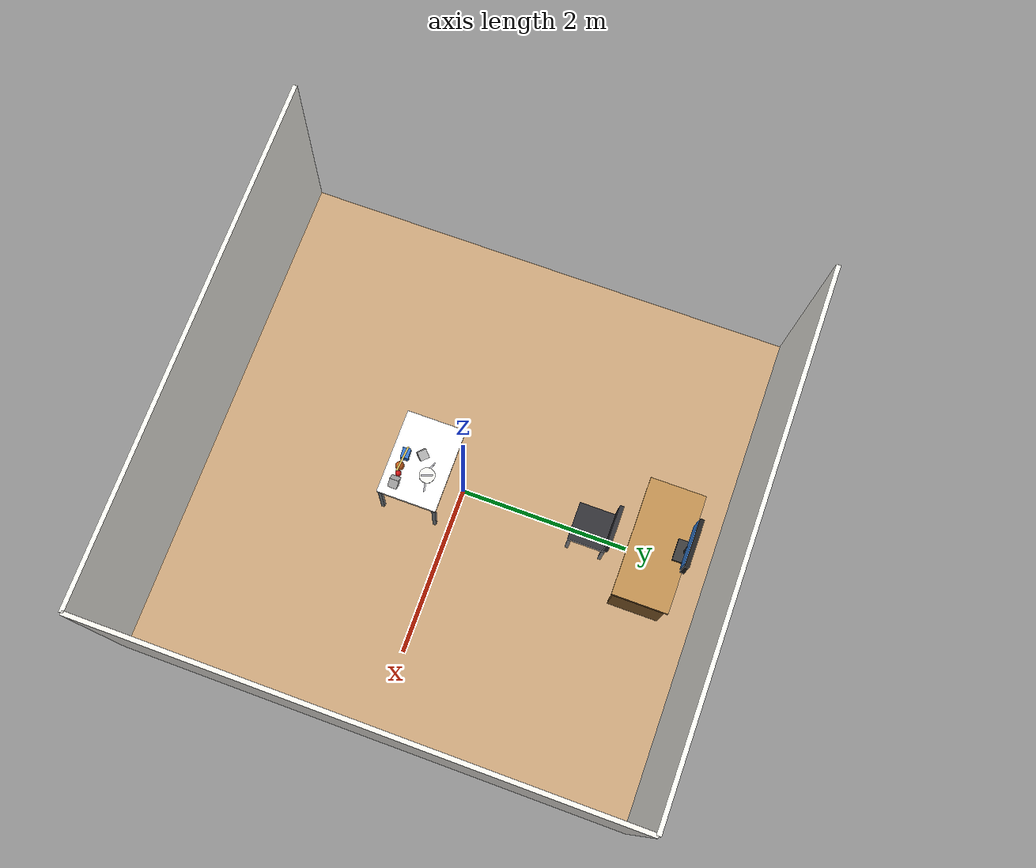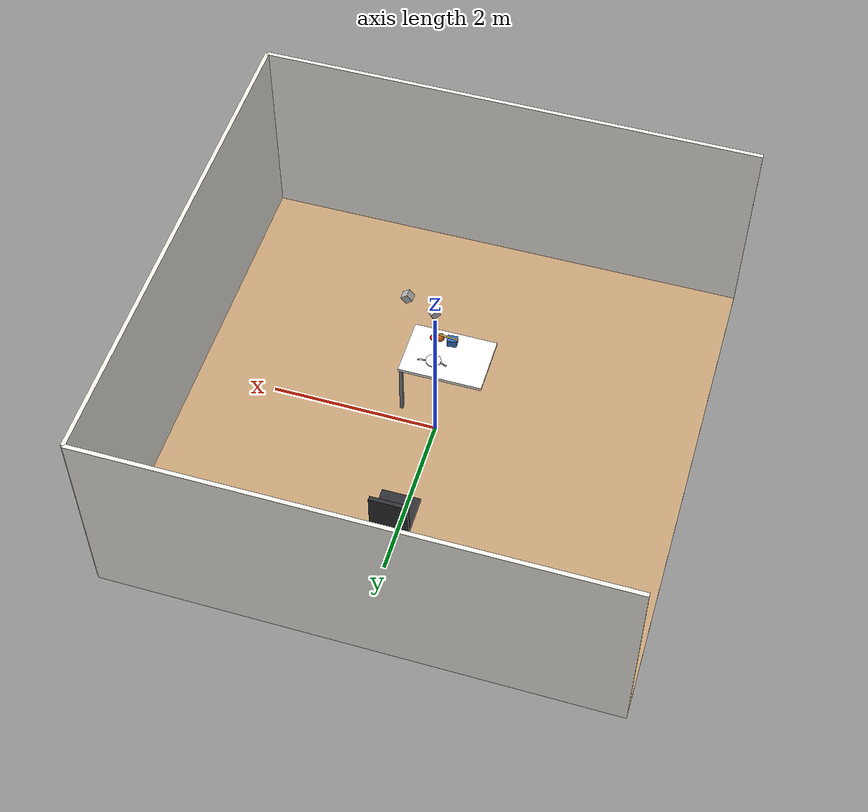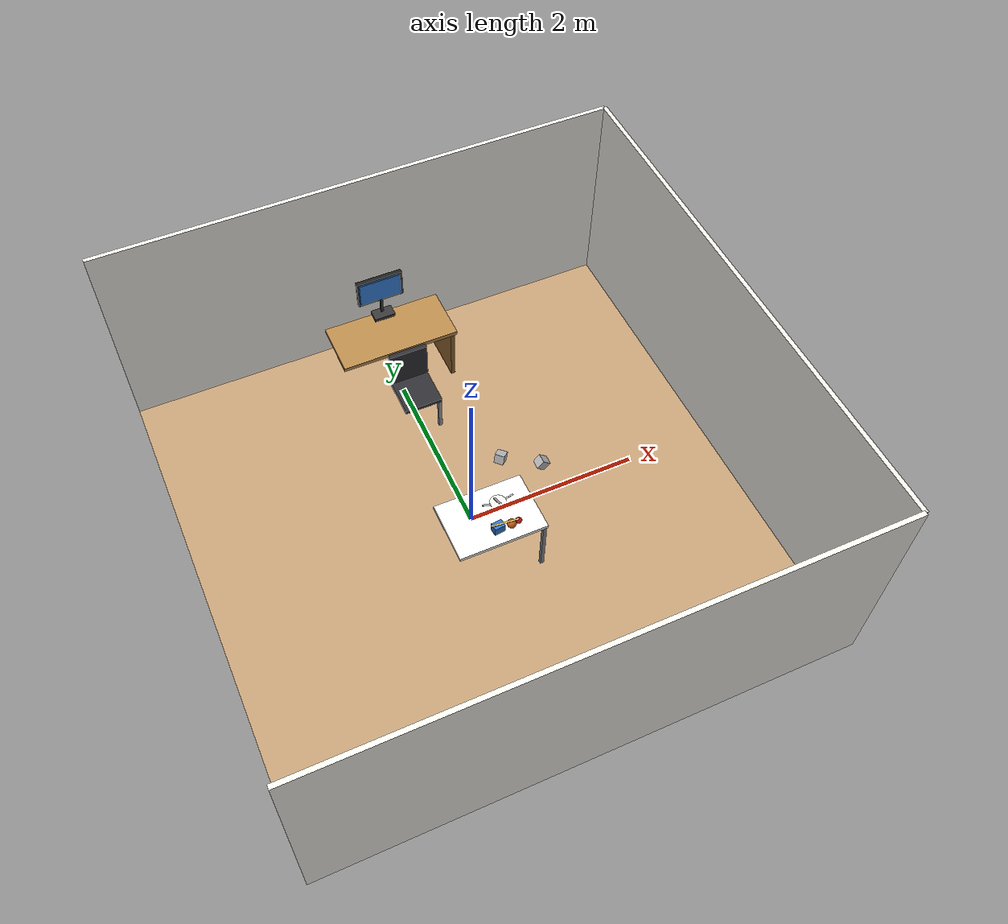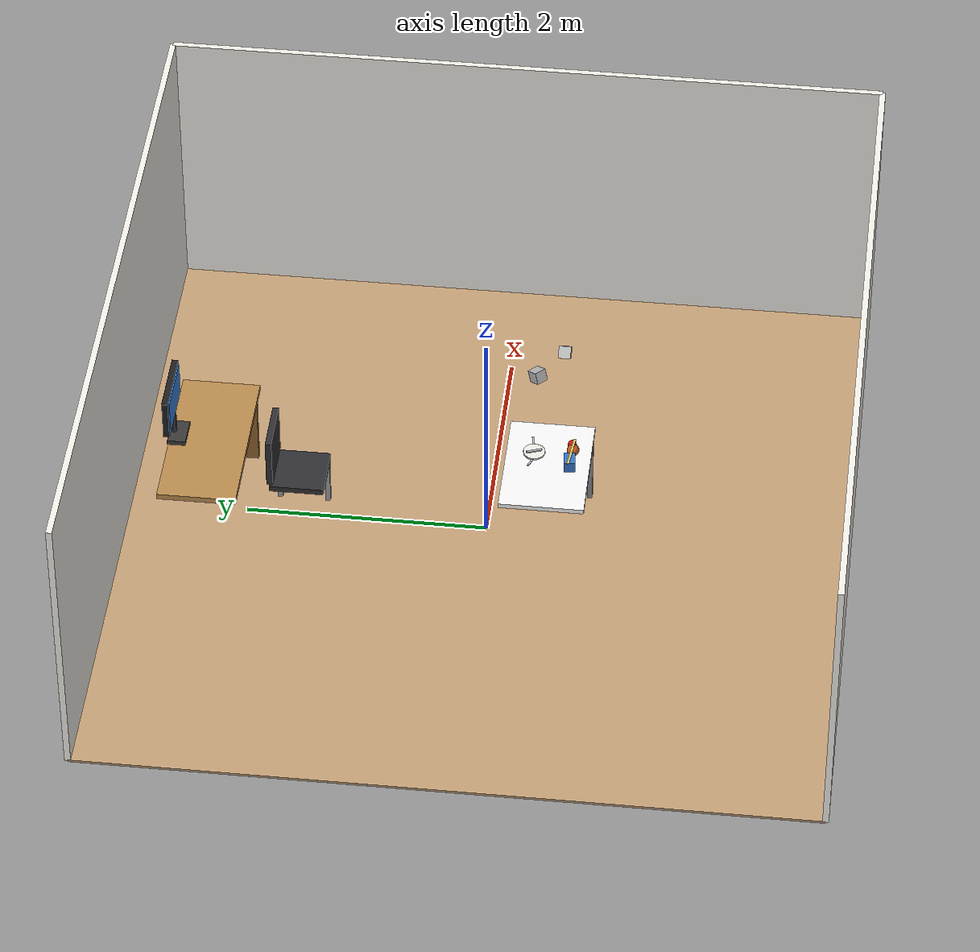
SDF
<sdf version="1.10">
 <world name="bps_room">
  <model name="floor">
   <static>true</static>
   <link name="link">
    <collision name="collision"><geometry><box><size>6 6 0.02</size></box></geometry></collision>
    <visual name="visual">
     <geometry><box><size>6 6 0.02</size></box></geometry>
     <material>
      <ambient>0.75999999 0.620000005 0.460000008 1</ambient>
      <diffuse>0.75999999 0.620000005 0.460000008 1</diffuse>
     </material>
    </visual>
    <inertial>
     <mass>1</mass>
     <inertia><ixx>1</ixx><ixy>0</ixy><ixz>0</ixz><iyy>1</iyy><iyz>0</iyz><izz>1</izz></inertia>
    </inertial>
   </link>
  </model>
  <model name="wall_north">
   <static>true</static>
   <pose>0 3 1.25 0 0 0</pose>
   <link name="link">
    <collision name="collision">
     <geometry><box><size>6 0.050000000000000003 2.5</size></box></geometry>
    </collision>
    <visual name="visual">
     <geometry><box><size>6 0.050000000000000003 2.5</size></box></geometry>
     <material>
      <ambient>0.949999988 0.939999998 0.910000026 1</ambient>
      <diffuse>0.949999988 0.939999998 0.910000026 1</diffuse>
     </material>
    </visual>
    <inertial>
     <mass>1</mass>
     <inertia><ixx>1</ixx><ixy>0</ixy><ixz>0</ixz><iyy>1</iyy><iyz>0</iyz><izz>1</izz></inertia>
    </inertial>
   </link>
  </model>
  <model name="wall_south">
   <static>true</static>
   <pose>0 -3 1.25 0 0 0</pose>
   <link name="link">
    <collision name="collision">
     <geometry><box><size>6 0.050000000000000003 2.5</size></box></geometry>
    </collision>
    <visual name="visual">
     <geometry><box><size>6 0.050000000000000003 2.5</size></box></geometry>
     <material>
      <ambient>0.949999988 0.939999998 0.910000026 1</ambient>
      <diffuse>0.949999988 0.939999998 0.910000026 1</diffuse>
     </material>
    </visual>
    <inertial>
     <mass>1</mass>
     <inertia><ixx>1</ixx><ixy>0</ixy><ixz>0</ixz><iyy>1</iyy><iyz>0</iyz><izz>1</izz></inertia>
    </inertial>
   </link>
  </model>
  <model name="wall_east">
   <static>true</static>
   <pose>3 0 1.25 0 0 0</pose>
   <link name="link">
    <collision name="collision">
     <geometry><box><size>0.050000000000000003 6 2.5</size></box></geometry>
    </collision>
    <visual name="visual">
     <geometry><box><size>0.050000000000000003 6 2.5</size></box></geometry>
     <material>
      <ambient>0.930000007 0.920000017 0.889999986 1</ambient>
      <diffuse>0.930000007 0.920000017 0.889999986 1</diffuse>
     </material>
    </visual>
    <inertial>
     <mass>1</mass>
     <inertia><ixx>1</ixx><ixy>0</ixy><ixz>0</ixz><iyy>1</iyy><iyz>0</iyz><izz>1</izz></inertia>
    </inertial>
   </link>
  </model>
  <model name="desk">
   <static>true</static>
   <pose>0 2.2999999999999998 0.75 0 0 0</pose>
   <link name="link">
    <collision name="collision">
     <geometry><box><size>1.3999999999999999 0.65000000000000002 0.050000000000000003</size></box></geometry>
    </collision>
    <visual name="visual">
     <geometry><box><size>1.3999999999999999 0.65000000000000002 0.050000000000000003</size></box></geometry>
     <material>
      <ambient>0.720000029 0.540000021 0.300000012 1</ambient>
      <diffuse>0.720000029 0.540000021 0.300000012 1</diffuse>
     </material>
    </visual>
    <inertial>
     <mass>1</mass>
     <inertia><ixx>1</ixx><ixy>0</ixy><ixz>0</ixz><iyy>1</iyy><iyz>0</iyz><izz>1</izz></inertia>
    </inertial>
   </link>
  </model>
  <model name="desk_leg_right">
   <static>true</static>
   <pose>0.65000000000000002 2.2999999999999998 0.375 0 0 0</pose>
   <link name="link">
    <collision name="collision">
     <geometry><box><size>0.050000000000000003 0.59999999999999998 0.75</size></box></geometry>
    </collision>
    <visual name="visual">
     <geometry><box><size>0.050000000000000003 0.59999999999999998 0.75</size></box></geometry>
     <material>
      <ambient>0.550000012 0.379999995 0.180000007 1</ambient>
      <diffuse>0.550000012 0.379999995 0.180000007 1</diffuse>
     </material>
    </visual>
    <inertial>
     <mass>1</mass>
     <inertia><ixx>1</ixx><ixy>0</ixy><ixz>0</ixz><iyy>1</iyy><iyz>0</iyz><izz>1</izz></inertia>
    </inertial>
   </link>
  </model>
  <model name="monitor_base">
   <static>true</static>
   <pose>0 2.5499999999999998 0.81999999999999995 0 0 0</pose>
   <link name="link">
    <collision name="collision">
     <geometry><box><size>0.25 0.14999999999999999 0.040000000000000001</size></box></geometry>
    </collision>
    <visual name="visual">
     <geometry><box><size>0.25 0.14999999999999999 0.040000000000000001</size></box></geometry>
     <material>
      <ambient>0.219999999 0.219999999 0.219999999 1</ambient>
      <diffuse>0.219999999 0.219999999 0.219999999 1</diffuse>
     </material>
    </visual>
    <inertial>
     <mass>1</mass>
     <inertia><ixx>1</ixx><ixy>0</ixy><ixz>0</ixz><iyy>1</iyy><iyz>0</iyz><izz>1</izz></inertia>
    </inertial>
   </link>
  </model>
  <model name="monitor_stand">
   <static>true</static>
   <pose>0 2.5800000000000001 0.96999999999999997 0 0 0</pose>
   <link name="link">
    <collision name="collision">
     <geometry><box><size>0.029999999999999999 0.029999999999999999 0.26000000000000001</size></box></geometry>
    </collision>
    <visual name="visual">
     <geometry><box><size>0.029999999999999999 0.029999999999999999 0.26000000000000001</size></box></geometry>
     <material>
      <ambient>0.219999999 0.219999999 0.219999999 1</ambient>
      <diffuse>0.219999999 0.219999999 0.219999999 1</diffuse>
     </material>
    </visual>
    <inertial>
     <mass>1</mass>
     <inertia><ixx>1</ixx><ixy>0</ixy><ixz>0</ixz><iyy>1</iyy><iyz>0</iyz><izz>1</izz></inertia>
    </inertial>
   </link>
  </model>
  <model name="monitor_screen">
   <static>true</static>
   <pose>0 2.6000000000000001 1.2 0 0 0</pose>
   <link name="link">
    <collision name="collision">
     <geometry><box><size>0.55000000000000004 0.050000000000000003 0.34999999999999998</size></box></geometry>
    </collision>
    <visual name="visual">
     <geometry><box><size>0.55000000000000004 0.050000000000000003 0.34999999999999998</size></box></geometry>
     <material>
      <ambient>0.119999997 0.119999997 0.119999997 1</ambient>
      <diffuse>0.119999997 0.119999997 0.119999997 1</diffuse>
     </material>
    </visual>
    <inertial>
     <mass>1</mass>
     <inertia><ixx>1</ixx><ixy>0</ixy><ixz>0</ixz><iyy>1</iyy><iyz>0</iyz><izz>1</izz></inertia>
    </inertial>
   </link>
  </model>
  <model name="monitor_face">
   <static>true</static>
   <pose>0 2.5699999999999998 1.2 0 0 0</pose>
   <link name="link">
    <visual name="visual">
     <geometry><box><size>0.5 0.01 0.29999999999999999</size></box></geometry>
     <material>
      <ambient>0.219999999 0.519999981 0.879999995 1</ambient>
      <diffuse>0.219999999 0.519999981 0.879999995 1</diffuse>
      <emissive>0.100000001 0.25 0.449999988 1</emissive>
     </material>
    </visual>
    <inertial>
     <mass>1</mass>
     <inertia><ixx>1</ixx><ixy>0</ixy><ixz>0</ixz><iyy>1</iyy><iyz>0</iyz><izz>1</izz></inertia>
    </inertial>
   </link>
  </model>
  <model name="chair_seat">
   <static>true</static>
   <pose>0 1.55 0.47999999999999998 0 0 0</pose>
   <link name="link">
    <collision name="collision">
     <geometry><box><size>0.45000000000000001 0.45000000000000001 0.050000000000000003</size></box></geometry>
    </collision>
    <visual name="visual">
     <geometry><box><size>0.45000000000000001 0.45000000000000001 0.050000000000000003</size></box></geometry>
     <material>
      <ambient>0.180000007 0.180000007 0.200000003 1</ambient>
      <diffuse>0.180000007 0.180000007 0.200000003 1</diffuse>
     </material>
    </visual>
    <inertial>
     <mass>1</mass>
     <inertia><ixx>1</ixx><ixy>0</ixy><ixz>0</ixz><iyy>1</iyy><iyz>0</iyz><izz>1</izz></inertia>
    </inertial>
   </link>
  </model>
  <model name="chair_back">
   <static>true</static>
   <pose>0 1.77 0.75 0 0 0</pose>
   <link name="link">
    <collision name="collision">
     <geometry><box><size>0.45000000000000001 0.050000000000000003 0.45000000000000001</size></box></geometry>
    </collision>
    <visual name="visual">
     <geometry><box><size>0.45000000000000001 0.050000000000000003 0.45000000000000001</size></box></geometry>
     <material>
      <ambient>0.180000007 0.180000007 0.200000003 1</ambient>
      <diffuse>0.180000007 0.180000007 0.200000003 1</diffuse>
     </material>
    </visual>
    <inertial>
     <mass>1</mass>
     <inertia><ixx>1</ixx><ixy>0</ixy><ixz>0</ixz><iyy>1</iyy><iyz>0</iyz><izz>1</izz></inertia>
    </inertial>
   </link>
  </model>
  <model name="chair_leg_fr">
   <static>true</static>
   <pose>0.20000000000000001 1.3500000000000001 0.23999999999999999 0 0 0</pose>
   <link name="link">
    <collision name="collision">
     <geometry><box><size>0.040000000000000001 0.040000000000000001 0.47999999999999998</size></box></geometry>
    </collision>
    <visual name="visual">
     <geometry><box><size>0.040000000000000001 0.040000000000000001 0.47999999999999998</size></box></geometry>
     <material>
      <ambient>0.600000024 0.600000024 0.620000005 1</ambient>
      <diffuse>0.600000024 0.600000024 0.620000005 1</diffuse>
     </material>
    </visual>
    <inertial>
     <mass>1</mass>
     <inertia><ixx>1</ixx><ixy>0</ixy><ixz>0</ixz><iyy>1</iyy><iyz>0</iyz><izz>1</izz></inertia>
    </inertial>
   </link>
  </model>
  <model name="chair_leg_br">
   <static>true</static>
   <pose>0.20000000000000001 1.75 0.23999999999999999 0 0 0</pose>
   <link name="link">
    <collision name="collision">
     <geometry><box><size>0.040000000000000001 0.040000000000000001 0.47999999999999998</size></box></geometry>
    </collision>
    <visual name="visual">
     <geometry><box><size>0.040000000000000001 0.040000000000000001 0.47999999999999998</size></box></geometry>
     <material>
      <ambient>0.600000024 0.600000024 0.620000005 1</ambient>
      <diffuse>0.600000024 0.600000024 0.620000005 1</diffuse>
     </material>
    </visual>
    <inertial>
     <mass>1</mass>
     <inertia><ixx>1</ixx><ixy>0</ixy><ixz>0</ixz><iyy>1</iyy><iyz>0</iyz><izz>1</izz></inertia>
    </inertial>
   </link>
  </model>
  <model name="experiment_table">
   <static>true</static>
   <pose>0 -0.5 0.75 0 0 0</pose>
   <link name="link">
    <collision name="collision">
     <geometry><box><size>1 0.69999999999999996 0.040000000000000001</size></box></geometry>
    </collision>
    <visual name="visual">
     <geometry><box><size>1 0.69999999999999996 0.040000000000000001</size></box></geometry>
     <material>
      <ambient>0.959999979 0.959999979 0.959999979 1</ambient>
      <diffuse>0.959999979 0.959999979 0.959999979 1</diffuse>
     </material>
    </visual>
    <inertial>
     <mass>1</mass>
     <inertia><ixx>1</ixx><ixy>0</ixy><ixz>0</ixz><iyy>1</iyy><iyz>0</iyz><izz>1</izz></inertia>
    </inertial>
   </link>
  </model>
  <model name="table_leg_fr">
   <static>true</static>
   <pose>0.46999999999999997 -0.81999999999999995 0.375 0 0 0</pose>
   <link name="link">
    <collision name="collision">
     <geometry><box><size>0.040000000000000001 0.040000000000000001 0.75</size></box></geometry>
    </collision>
    <visual name="visual">
     <geometry><box><size>0.040000000000000001 0.040000000000000001 0.75</size></box></geometry>
     <material>
      <ambient>0.5 0.519999981 0.540000021 1</ambient>
      <diffuse>0.5 0.519999981 0.540000021 1</diffuse>
     </material>
    </visual>
    <inertial>
     <mass>1</mass>
     <inertia><ixx>1</ixx><ixy>0</ixy><ixz>0</ixz><iyy>1</iyy><iyz>0</iyz><izz>1</izz></inertia>
    </inertial>
   </link>
  </model>
  <model name="table_leg_br">
   <static>true</static>
   <pose>0.46999999999999997 -0.17999999999999999 0.375 0 0 0</pose>
   <link name="link">
    <collision name="collision">
     <geometry><box><size>0.040000000000000001 0.040000000000000001 0.75</size></box></geometry>
    </collision>
    <visual name="visual">
     <geometry><box><size>0.040000000000000001 0.040000000000000001 0.75</size></box></geometry>
     <material>
      <ambient>0.5 0.519999981 0.540000021 1</ambient>
      <diffuse>0.5 0.519999981 0.540000021 1</diffuse>
     </material>
    </visual>
    <inertial>
     <mass>1</mass>
     <inertia><ixx>1</ixx><ixy>0</ixy><ixz>0</ixz><iyy>1</iyy><iyz>0</iyz><izz>1</izz></inertia>
    </inertial>
   </link>
  </model>
  <model name="obj_tissue_box">
   <static>true</static>
   <pose>0 -0.68500000000000005 0.81999999999999995 0 0 0.08730000000000003</pose>
   <link name="link">
    <collision name="collision">
     <geometry><box><size>0.12 0.089999999999999997 0.10000000000000001</size></box></geometry>
    </collision>
    <visual name="visual">
     <geometry><box><size>0.12 0.089999999999999997 0.10000000000000001</size></box></geometry>
     <material>
      <ambient>0.200000003 0.449999988 0.779999971 1</ambient>
      <diffuse>0.200000003 0.449999988 0.779999971 1</diffuse>
      <specular>0.200000003 0.200000003 0.200000003 1</specular>
     </material>
     <plugin name="gz::sim::systems::Label" filename="gz-sim-label-system"><label>5</label></plugin>
    </visual>
    <inertial>
     <mass>1</mass>
     <inertia><ixx>1</ixx><ixy>0</ixy><ixz>0</ixz><iyy>1</iyy><iyz>0</iyz><izz>1</izz></inertia>
    </inertial>
   </link>
  </model>
  <model name="obj_bowl">
   <static>true</static>
   <pose>0.14999999999999999 -0.69999999999999996 0.81999999999999995 0 0 0</pose>
   <link name="link">
    <collision name="collision">
     <geometry><sphere><radius>0.050000000000000003</radius></sphere></geometry>
    </collision>
    <visual name="visual">
     <geometry><sphere><radius>0.050000000000000003</radius></sphere></geometry>
     <material>
      <ambient>0.75 0.349999994 0.100000001 1</ambient>
      <diffuse>0.75 0.349999994 0.100000001 1</diffuse>
      <specular>0.300000012 0.300000012 0.300000012 1</specular>
     </material>
     <plugin name="gz::sim::systems::Label" filename="gz-sim-label-system"><label>6</label></plugin>
    </visual>
    <inertial>
     <mass>1</mass>
     <inertia><ixx>1</ixx><ixy>0</ixy><ixz>0</ixz><iyy>1</iyy><iyz>0</iyz><izz>1</izz></inertia>
    </inertial>
   </link>
  </model>
  <model name="obj_apple">
   <static>true</static>
   <pose>0.23499999999999999 -0.68500000000000005 0.80500000000000005 0 0 0</pose>
   <link name="link">
    <collision name="collision">
     <geometry><sphere><radius>0.035000000000000003</radius></sphere></geometry>
    </collision>
    <visual name="visual">
     <geometry><sphere><radius>0.035000000000000003</radius></sphere></geometry>
     <material>
      <ambient>0.800000012 0.0799999982 0.0799999982 1</ambient>
      <diffuse>0.800000012 0.0799999982 0.0799999982 1</diffuse>
      <specular>0.400000006 0.400000006 0.400000006 1</specular>
     </material>
     <plugin name="gz::sim::systems::Label" filename="gz-sim-label-system"><label>7</label></plugin>
    </visual>
    <inertial>
     <mass>1</mass>
     <inertia><ixx>1</ixx><ixy>0</ixy><ixz>0</ixz><iyy>1</iyy><iyz>0</iyz><izz>1</izz></inertia>
    </inertial>
   </link>
  </model>
  <model name="obj_ruler">
   <static>true</static>
   <pose>0.074999999999999997 -0.6925 0.87250000000000005 0 0 -0.09949999999999995</pose>
   <link name="link">
    <collision name="collision">
     <geometry><box><size>0.29999999999999999 0.02 0.0050000000000000001</size></box></geometry>
    </collision>
    <visual name="visual">
     <geometry><box><size>0.29999999999999999 0.02 0.0050000000000000001</size></box></geometry>
     <material>
      <ambient>0.850000024 0.75 0.349999994 1</ambient>
      <diffuse>0.850000024 0.75 0.349999994 1</diffuse>
      <specular>0.300000012 0.300000012 0.300000012 1</specular>
     </material>
     <plugin name="gz::sim::systems::Label" filename="gz-sim-label-system"><label>12</label></plugin>
    </visual>
    <inertial>
     <mass>1</mass>
     <inertia><ixx>1</ixx><ixy>0</ixy><ixz>0</ixz><iyy>1</iyy><iyz>0</iyz><izz>1</izz></inertia>
    </inertial>
   </link>
  </model>
  <model name="obj_plate">
   <static>true</static>
   <pose>0.14000000000000001 -0.38 0.77749999999999997 0 0 0</pose>
   <link name="link">
    <collision name="collision">
     <geometry>
      <cylinder><radius>0.089999999999999997</radius><length>0.014999999999999999</length></cylinder>
     </geometry>
    </collision>
    <visual name="visual">
     <geometry>
      <cylinder><radius>0.089999999999999997</radius><length>0.014999999999999999</length></cylinder>
     </geometry>
     <material>
      <ambient>0.920000017 0.920000017 0.899999976 1</ambient>
      <diffuse>0.920000017 0.920000017 0.899999976 1</diffuse>
      <specular>0.300000012 0.300000012 0.300000012 1</specular>
     </material>
     <plugin name="gz::sim::systems::Label" filename="gz-sim-label-system"><label>13</label></plugin>
    </visual>
    <inertial>
     <mass>1</mass>
     <inertia><ixx>1</ixx><ixy>0</ixy><ixz>0</ixz><iyy>1</iyy><iyz>0</iyz><izz>1</izz></inertia>
    </inertial>
   </link>
  </model>
  <model name="obj_spoon">
   <static>true</static>
   <pose>0.14000000000000001 -0.38 0.79000000000000004 0 0 0.34910000000000002</pose>
   <link name="link">
    <collision name="collision"><geometry><box><size>0.02 0.13 0.01</size></box></geometry></collision>
    <visual name="visual">
     <geometry><box><size>0.02 0.13 0.01</size></box></geometry>
     <material>
      <ambient>0.720000029 0.720000029 0.75 1</ambient>
      <diffuse>0.720000029 0.720000029 0.75 1</diffuse>
      <specular>0.600000024 0.600000024 0.600000024 1</specular>
     </material>
     <plugin name="gz::sim::systems::Label" filename="gz-sim-label-system"><label>14</label></plugin>
    </visual>
    <inertial>
     <mass>1</mass>
     <inertia><ixx>1</ixx><ixy>0</ixy><ixz>0</ixz><iyy>1</iyy><iyz>0</iyz><izz>1</izz></inertia>
    </inertial>
   </link>
  </model>
  <model name="obj_fork">
   <static>true</static>
   <pose>0.040000000000000001 -0.37 0.77400000000000002 0 0 1.2217000000000002</pose>
   <link name="link">
    <collision name="collision">
     <geometry><box><size>0.014999999999999999 0.14000000000000001 0.0080000000000000002</size></box></geometry>
    </collision>
    <visual name="visual">
     <geometry><box><size>0.014999999999999999 0.14000000000000001 0.0080000000000000002</size></box></geometry>
     <material>
      <ambient>0.720000029 0.720000029 0.75 1</ambient>
      <diffuse>0.720000029 0.720000029 0.75 1</diffuse>
      <specular>0.600000024 0.600000024 0.600000024 1</specular>
     </material>
     <plugin name="gz::sim::systems::Label" filename="gz-sim-label-system"><label>15</label></plugin>
    </visual>
    <inertial>
     <mass>1</mass>
     <inertia><ixx>1</ixx><ixy>0</ixy><ixz>0</ixz><iyy>1</iyy><iyz>0</iyz><izz>1</izz></inertia>
    </inertial>
   </link>
  </model>
  <model name="obj_knife">
   <static>true</static>
   <pose>0.245 -0.36499999999999999 0.77300000000000002 0 0 1.7453000000000012</pose>
   <link name="link">
    <collision name="collision">
     <geometry><box><size>0.014999999999999999 0.16 0.0060000000000000001</size></box></geometry>
    </collision>
    <visual name="visual">
     <geometry><box><size>0.014999999999999999 0.16 0.0060000000000000001</size></box></geometry>
     <material>
      <ambient>0.75 0.75 0.779999971 1</ambient>
      <diffuse>0.75 0.75 0.779999971 1</diffuse>
      <specular>0.699999988 0.699999988 0.699999988 1</specular>
     </material>
     <plugin name="gz::sim::systems::Label" filename="gz-sim-label-system"><label>16</label></plugin>
    </visual>
    <inertial>
     <mass>1</mass>
     <inertia><ixx>1</ixx><ixy>0</ixy><ixz>0</ixz><iyy>1</iyy><iyz>0</iyz><izz>1</izz></inertia>
    </inertial>
   </link>
  </model>
  <model name="depth_camera_v2">
   <static>true</static>
   <pose>0.5752890707267679 -0.5405822506546974 1.5789195043627506 0.0 0.8726646259971649 3.141592653589793</pose>
   <link name="link">
    <pose>0.050000000000000003 0.050000000000000003 0.050000000000000003 0 0 0</pose>
    <inertial>
     <mass>0.10000000000000001</mass>
     <inertia>
      <ixx>0.00016666700000000001</ixx>
      <iyy>0.00016666700000000001</iyy>
      <izz>0.00016666700000000001</izz>
      <ixy>0</ixy>
      <ixz>0</ixz>
      <iyz>0</iyz>
     </inertia>
    </inertial>
    <collision name="collision">
     <geometry><box><size>0.10000000000000001 0.10000000000000001 0.10000000000000001</size></box></geometry>
    </collision>
    <visual name="visual">
     <geometry><box><size>0.10000000000000001 0.10000000000000001 0.10000000000000001</size></box></geometry>
    </visual>
    <sensor name="depth_camera2" type="depth_camera">
     <topic>depth_camera_v2</topic>
     <update_rate>10</update_rate>
     <enable_metrics>false</enable_metrics>
     <camera>
      <horizontal_fov>1.2</horizontal_fov>
      <image>
       <width>640</width>
       <height>480</height>
       <format>R_FLOAT32</format>
       <anti_aliasing>4</anti_aliasing>
      </image>
      <camera_info_topic>__default__</camera_info_topic>
      <triggered>false</triggered>
      <clip><near>0.10000000000000001</near><far>2</far></clip>
      <save enabled="false"><path>__default__</path></save>
      <visibility_mask>4294967295</visibility_mask>
      <noise><type>none</type><mean>0</mean><stddev>0</stddev></noise>
      <distortion><k1>0</k1><k2>0</k2><k3>0</k3><p1>0</p1><p2>0</p2><center>0.5 0.5</center></distortion>
      <lens>
       <type>stereographic</type>
       <scale_to_hfov>true</scale_to_hfov>
       <cutoff_angle>1.5707963267948966</cutoff_angle>
       <env_texture_size>256</env_texture_size>
      </lens>
     </camera>
    </sensor>
    <sensor name="rgb_camera2" type="camera">
     <topic>rgb_camera_v2</topic>
     <update_rate>10</update_rate>
     <enable_metrics>false</enable_metrics>
     <camera>
      <horizontal_fov>1.2</horizontal_fov>
      <image><width>640</width><height>480</height><format>RGB_INT8</format><anti_aliasing>4</anti_aliasing></image>
      <camera_info_topic>__default__</camera_info_topic>
      <triggered>false</triggered>
      <clip><near>0.10000000000000001</near><far>2</far></clip>
      <save enabled="false"><path>__default__</path></save>
      <visibility_mask>4294967295</visibility_mask>
      <noise><type>none</type><mean>0</mean><stddev>0</stddev></noise>
      <distortion><k1>0</k1><k2>0</k2><k3>0</k3><p1>0</p1><p2>0</p2><center>0.5 0.5</center></distortion>
      <lens>
       <type>stereographic</type>
       <scale_to_hfov>true</scale_to_hfov>
       <cutoff_angle>1.5707963267948966</cutoff_angle>
       <env_texture_size>256</env_texture_size>
      </lens>
     </camera>
    </sensor>
    <sensor name="semantic_camera2" type="segmentation_camera">
     <topic>semantic_camera_v2</topic>
     <update_rate>10</update_rate>
     <enable_metrics>false</enable_metrics>
     <camera>
      <horizontal_fov>1.2</horizontal_fov>
      <image><width>640</width><height>480</height></image>
      <clip><near>0.1</near><far>100</far></clip>
      <segmentation_type>semantic</segmentation_type>
     </camera>
    </sensor>
   </link>
  </model>
  <model name="depth_camera_v6">
   <static>true</static>
   <pose>0.1501617474234064 -0.32292196427151965 1.65859841995109 -0.0 1.2217304763960306 -2.356194490192345</pose>
   <link name="link">
    <pose>0.050000000000000003 0.050000000000000003 0.050000000000000003 0 0 0</pose>
    <inertial>
     <mass>0.10000000000000001</mass>
     <inertia>
      <ixx>0.00016666700000000001</ixx>
      <iyy>0.00016666700000000001</iyy>
      <izz>0.00016666700000000001</izz>
      <ixy>0</ixy>
      <ixz>0</ixz>
      <iyz>0</iyz>
     </inertia>
    </inertial>
    <collision name="collision">
     <geometry><box><size>0.10000000000000001 0.10000000000000001 0.10000000000000001</size></box></geometry>
    </collision>
    <visual name="visual">
     <geometry><box><size>0.10000000000000001 0.10000000000000001 0.10000000000000001</size></box></geometry>
    </visual>
    <sensor name="depth_camera6" type="depth_camera">
     <topic>depth_camera_v6</topic>
     <update_rate>10</update_rate>
     <enable_metrics>false</enable_metrics>
     <camera>
      <horizontal_fov>1.2</horizontal_fov>
      <image>
       <width>640</width>
       <height>480</height>
       <format>R_FLOAT32</format>
       <anti_aliasing>4</anti_aliasing>
      </image>
      <camera_info_topic>__default__</camera_info_topic>
      <triggered>false</triggered>
      <clip><near>0.10000000000000001</near><far>2</far></clip>
      <save enabled="false"><path>__default__</path></save>
      <visibility_mask>4294967295</visibility_mask>
      <noise><type>none</type><mean>0</mean><stddev>0</stddev></noise>
      <distortion><k1>0</k1><k2>0</k2><k3>0</k3><p1>0</p1><p2>0</p2><center>0.5 0.5</center></distortion>
      <lens>
       <type>stereographic</type>
       <scale_to_hfov>true</scale_to_hfov>
       <cutoff_angle>1.5707963267948966</cutoff_angle>
       <env_texture_size>256</env_texture_size>
      </lens>
     </camera>
    </sensor>
    <sensor name="rgb_camera6" type="camera">
     <topic>rgb_camera_v6</topic>
     <update_rate>10</update_rate>
     <enable_metrics>false</enable_metrics>
     <camera>
      <horizontal_fov>1.2</horizontal_fov>
      <image><width>640</width><height>480</height><format>RGB_INT8</format><anti_aliasing>4</anti_aliasing></image>
      <camera_info_topic>__default__</camera_info_topic>
      <triggered>false</triggered>
      <clip><near>0.10000000000000001</near><far>2</far></clip>
      <save enabled="false"><path>__default__</path></save>
      <visibility_mask>4294967295</visibility_mask>
      <noise><type>none</type><mean>0</mean><stddev>0</stddev></noise>
      <distortion><k1>0</k1><k2>0</k2><k3>0</k3><p1>0</p1><p2>0</p2><center>0.5 0.5</center></distortion>
      <lens>
       <type>stereographic</type>
       <scale_to_hfov>true</scale_to_hfov>
       <cutoff_angle>1.5707963267948966</cutoff_angle>
       <env_texture_size>256</env_texture_size>
      </lens>
     </camera>
    </sensor>
    <sensor name="semantic_camera6" type="segmentation_camera">
     <topic>semantic_camera_v6</topic>
     <update_rate>10</update_rate>
     <enable_metrics>false</enable_metrics>
     <camera>
      <horizontal_fov>1.2</horizontal_fov>
      <image><width>640</width><height>480</height></image>
      <clip><near>0.1</near><far>100</far></clip>
      <segmentation_type>semantic</segmentation_type>
     </camera>
    </sensor>
   </link>
  </model>
 </world>
</sdf>
